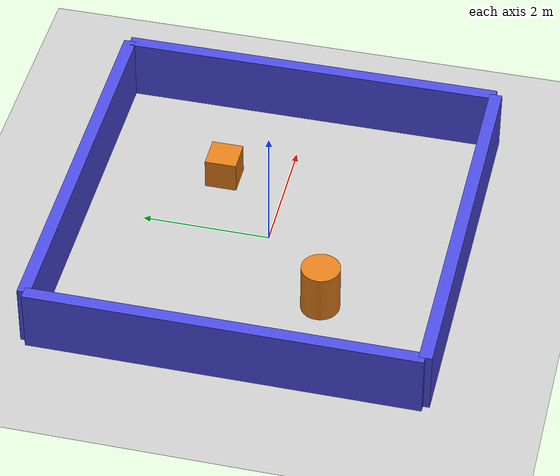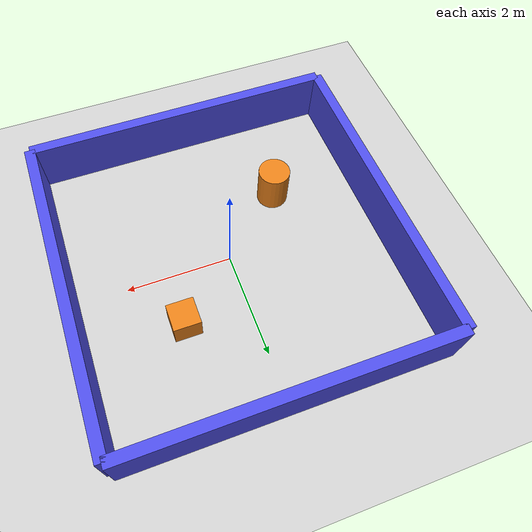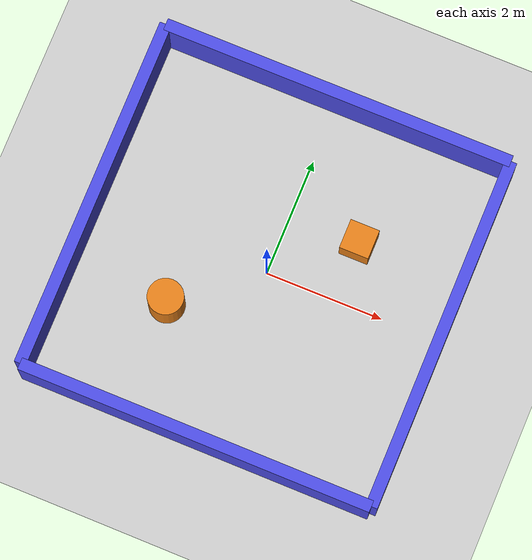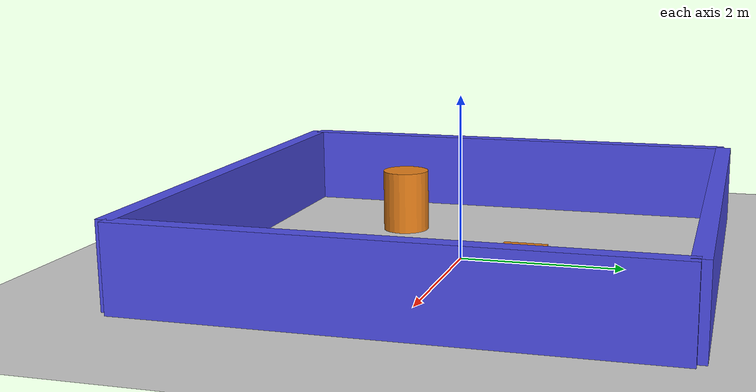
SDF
<?xml version="1.0" ?>
<sdf version="1.10">
  <world name="obstacles">

    <plugin filename="gz-sim-physics-system"
            name="gz::sim::systems::Physics"/>
    <plugin filename="gz-sim-user-commands-system"
            name="gz::sim::systems::UserCommands"/>
    <plugin filename="gz-sim-scene-broadcaster-system"
            name="gz::sim::systems::SceneBroadcaster"/>
    <plugin filename="gz-sim-sensors-system"
            name="gz::sim::systems::Sensors">
      <render_engine>ogre2</render_engine>
    </plugin>

    <!-- lighting -->
    <light type="directional" name="sun">
      <cast_shadows>true</cast_shadows>
      <pose>0 0 10 0 0 0</pose>
      <diffuse>0.8 0.8 0.8 1</diffuse>
      <specular>0.2 0.2 0.2 1</specular>
      <direction>-0.5 0.1 -0.9</direction>
    </light>

    <!-- ground plane -->
    <model name="ground_plane">
      <static>true</static>
      <link name="link">
        <collision name="collision">
          <geometry><plane><normal>0 0 1</normal><size>50 50</size></plane></geometry>
        </collision>
        <visual name="visual">
          <geometry><plane><normal>0 0 1</normal><size>50 50</size></plane></geometry>
          <material>
            <ambient>0.8 0.8 0.8 1</ambient>
            <diffuse>0.8 0.8 0.8 1</diffuse>
          </material>
        </visual>
      </link>
    </model>

    <!-- ============ Obstacles (walls + boxes) ============ -->
    <!-- reusable helper is not available in raw SDF, so walls are spelled out -->

    <model name="wall_north">
      <static>true</static>
      <pose>0 3 0.5 0 0 0</pose>
      <link name="link">
        <collision name="c"><geometry><box><size>6 0.2 1</size></box></geometry></collision>
        <visual name="v"><geometry><box><size>6 0.2 1</size></box></geometry>
          <material><ambient>0.3 0.3 0.9 1</ambient><diffuse>0.3 0.3 0.9 1</diffuse></material>
        </visual>
      </link>
    </model>

    <model name="wall_south">
      <static>true</static>
      <pose>0 -3 0.5 0 0 0</pose>
      <link name="link">
        <collision name="c"><geometry><box><size>6 0.2 1</size></box></geometry></collision>
        <visual name="v"><geometry><box><size>6 0.2 1</size></box></geometry>
          <material><ambient>0.3 0.3 0.9 1</ambient><diffuse>0.3 0.3 0.9 1</diffuse></material>
        </visual>
      </link>
    </model>

    <model name="wall_east">
      <static>true</static>
      <pose>3 0 0.5 0 0 1.5708</pose>
      <link name="link">
        <collision name="c"><geometry><box><size>6 0.2 1</size></box></geometry></collision>
        <visual name="v"><geometry><box><size>6 0.2 1</size></box></geometry>
          <material><ambient>0.3 0.3 0.9 1</ambient><diffuse>0.3 0.3 0.9 1</diffuse></material>
        </visual>
      </link>
    </model>

    <model name="wall_west">
      <static>true</static>
      <pose>-3 0 0.5 0 0 1.5708</pose>
      <link name="link">
        <collision name="c"><geometry><box><size>6 0.2 1</size></box></geometry></collision>
        <visual name="v"><geometry><box><size>6 0.2 1</size></box></geometry>
          <material><ambient>0.3 0.3 0.9 1</ambient><diffuse>0.3 0.3 0.9 1</diffuse></material>
        </visual>
      </link>
    </model>

    <!-- a couple of interior obstacles -->
    <model name="box_1">
      <static>true</static>
      <pose>1.2 1.0 0.25 0 0 0</pose>
      <link name="link">
        <collision name="c"><geometry><box><size>0.5 0.5 0.5</size></box></geometry></collision>
        <visual name="v"><geometry><box><size>0.5 0.5 0.5</size></box></geometry>
          <material><ambient>0.9 0.5 0.1 1</ambient><diffuse>0.9 0.5 0.1 1</diffuse></material>
        </visual>
      </link>
    </model>

    <model name="cylinder_1">
      <static>true</static>
      <pose>-1.3 -1.1 0.4 0 0 0</pose>
      <link name="link">
        <collision name="c"><geometry><cylinder><radius>0.3</radius><length>0.8</length></cylinder></geometry></collision>
        <visual name="v"><geometry><cylinder><radius>0.3</radius><length>0.8</length></cylinder></geometry>
          <material><ambient>0.9 0.5 0.1 1</ambient><diffuse>0.9 0.5 0.1 1</diffuse></material>
        </visual>
      </link>
    </model>

  </world>
</sdf>
